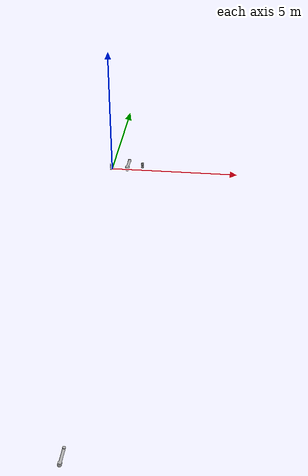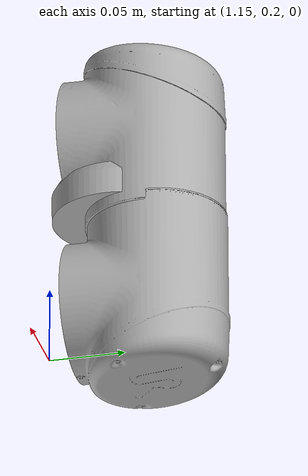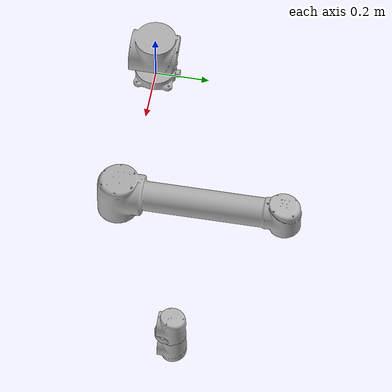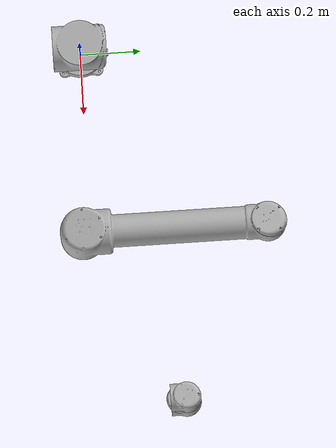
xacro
<?xml version="1.0"?>
<robot xmlns:xacro="http://ros.org/wiki/xacro"
       name="ur10" >

  <!-- common stuff -->
  <xacro:include filename="$(find ur_description)/urdf/common.gazebo.xacro" />

  <!-- ur10 -->
  <xacro:include filename="$(find ur_description)/urdf/my.urdf.xacro" />

  <!-- ur10 calibration -->
  <xacro:include filename="$(find ur_description)/urdf/ur10_1.calibration.xacro" />

  <!-- arm -->
  <xacro:ur10_robot prefix="my_" joint_limited="false"/>

  <link name="world" />

  <joint name="world_joint" type="fixed">
    <parent link="world" />
    <child link = "my_base_link" />
    <origin xyz="0.0 0.0 0.0" rpy="0.0 0.0 0.0" />
  </joint>

</robot>

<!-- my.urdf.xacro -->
<robot xmlns:xacro="http://ros.org/wiki/xacro">

<!--
  Author: Robert Bevec
-->

  <xacro:include filename="$(find ur_description)/urdf/ur.transmission.xacro" />
  <xacro:include filename="$(find ur_description)/urdf/ur.gazebo.xacro" />

  <!-- Inertia parameters -->
  <xacro:property name="base_mass" value="4.0" />  <!-- This mass might be incorrect -->
  <xacro:property name="shoulder_mass" value="7.778" />
  <xacro:property name="upper_arm_mass" value="12.93" />
  <xacro:property name="forearm_mass" value="3.87" />
  <xacro:property name="wrist_1_mass" value="1.96" />
  <xacro:property name="wrist_2_mass" value="1.96" />
  <xacro:property name="wrist_3_mass" value="0.202" />

  <xacro:property name="shoulder_cog" value="0.00008 0.00244 -0.037" />
  <xacro:property name="upper_arm_cog" value="0.00001 0.15061 0.38757" />
  <xacro:property name="forearm_cog" value="-0.00012 0.06112 0.1984" />
  <xacro:property name="wrist_1_cog" value="-0.00021 -0.00112 0.02269" />
  <xacro:property name="wrist_2_cog" value="-0.00021 0.00112 0.002269" />
  <xacro:property name="wrist_3_cog" value="0 -0.001156 -0.00149" />

    <!-- Kinematic model -->
  <!-- Properties from urcontrol.conf -->
  <!-- When applying parameters keep in mind that the parameters are in CS base, not base_link, that is why some minuses appear -->
  <xacro:property name="ur10_a1" value="0.0" />
  <xacro:property name="ur10_a2" value="-0.612" />
  <xacro:property name="ur10_a3" value="-0.5723" />
  <xacro:property name="ur10_a4" value="0.0" />
  <xacro:property name="ur10_a5" value="0.0" />
  <xacro:property name="ur10_a6" value="0.0" />

  <xacro:property name="ur10_d1" value="0.1273" />
  <xacro:property name="ur10_d2" value="0.0" />
  <xacro:property name="ur10_d3" value="0.0" />
  <xacro:property name="ur10_d4" value="0.163941" />
  <xacro:property name="ur10_d5" value="0.1157" />
  <xacro:property name="ur10_d6" value="0.0922" />

  <xacro:property name="ur10_alpha1" value="${pi / 2}" />
  <xacro:property name="ur10_alpha2" value="0.0" />
  <xacro:property name="ur10_alpha3" value="0.0" />
  <xacro:property name="ur10_alpha4" value="${pi / 2}" />
  <xacro:property name="ur10_alpha5" value="${-pi / 2}" />
  <xacro:property name="ur10_alpha6" value="0.0" />

  <!-- Calibrated model -->
  <!-- Properties from calib.conf , include a file in your robot xacro under this include, to overwrite these values. -->
  <xacro:property name="delta_theta1" value="0" />
  <xacro:property name="delta_theta2" value="0" />
  <xacro:property name="delta_theta3" value="0" />
  <xacro:property name="delta_theta4" value="0" />
  <xacro:property name="delta_theta5" value="0" />
  <xacro:property name="delta_theta6" value="0" />

  <xacro:property name="delta_a1" value="0" />
  <xacro:property name="delta_a2" value="0" />
  <xacro:property name="delta_a3" value="0" />
  <xacro:property name="delta_a4" value="0" />
  <xacro:property name="delta_a5" value="0" />
  <xacro:property name="delta_a6" value="0" />

  <xacro:property name="delta_d1" value="0" />
  <xacro:property name="delta_d2" value="0" />
  <xacro:property name="delta_d3" value="0" />
  <xacro:property name="delta_d4" value="0" />
  <xacro:property name="delta_d5" value="0" />
  <xacro:property name="delta_d6" value="0" />

  <xacro:property name="delta_alpha1" value="0" />
  <xacro:property name="delta_alpha2" value="0" />
  <xacro:property name="delta_alpha3" value="0" />
  <xacro:property name="delta_alpha4" value="0" />
  <xacro:property name="delta_alpha5" value="0" />
  <xacro:property name="delta_alpha6" value="0" />

  <!-- Arbitrary offsets for shoulder/elbow joints -->
  <xacro:property name="shoulder_offset" value="0.220941" />  <!-- measured from model -->
  <xacro:property name="elbow_offset" value="-0.1719" /> <!-- measured from model -->

  <xacro:macro name="cylinder_inertial" params="radius length mass *origin">
    <inertial>
      <mass value="${mass}" />
      <xacro:insert_block name="origin" />
      <inertia ixx="${0.0833333 * mass * (3 * radius * radius + length * length)}" ixy="0.0" ixz="0.0"
        iyy="${0.0833333 * mass * (3 * radius * radius + length * length)}" iyz="0.0"
        izz="${0.5 * mass * radius * radius}" />
    </inertial>
  </xacro:macro>

  <xacro:macro name="ur10_robot" params="prefix joint_limited
		 shoulder_pan_lower_limit:=${-pi}    shoulder_pan_upper_limit:=${pi}
		 shoulder_lift_lower_limit:=${-pi}    shoulder_lift_upper_limit:=${pi}
		 elbow_joint_lower_limit:=${-pi}    elbow_joint_upper_limit:=${pi}
		 wrist_1_lower_limit:=${-pi}    wrist_1_upper_limit:=${pi}
		 wrist_2_lower_limit:=${-pi}    wrist_2_upper_limit:=${pi}
		 wrist_3_lower_limit:=${-pi}    wrist_3_upper_limit:=${pi}">

    <link name="${prefix}base" >
      <visual>
        <geometry>
          <mesh filename="package://ur_description/meshes/ur10/visual/base.dae"/>
        </geometry>
        <material name="LightGrey">
          <color rgba="0.7 0.7 0.7 1.0"/>
        </material>
      </visual>
      <collision>
        <geometry>
          <mesh filename="package://ur_description/meshes/ur10/collision/base.stl"/>
        </geometry>
      </collision>
      <xacro:cylinder_inertial radius="0.075" length="0.038" mass="${base_mass}">
        <origin xyz="0.0 0.0 0.0" rpy="0 0 0" />
      </xacro:cylinder_inertial>
    </link>

    <joint name="${prefix}shoulder_pan_joint" type="revolute">
      <parent link="${prefix}base" />
      <child link = "${prefix}shoulder_link_theta" />
      <origin xyz="0.0 0.0 ${ur10_d1 + delta_d1}" rpy="0.0 0.0 ${delta_theta1}" />
      <axis xyz="0 0 1" />
      <xacro:unless value="${joint_limited}">
        <limit lower="${-2.0 * pi}" upper="${2.0 * pi}" effort="330.0" velocity="2.16"/>
      </xacro:unless>
      <xacro:if value="${joint_limited}">
        <limit lower="${shoulder_pan_lower_limit}" upper="${shoulder_pan_upper_limit}" effort="330.0" velocity="2.16"/>
      </xacro:if>
      <dynamics damping="0.0" friction="0.0"/>
    </joint>

    <joint name="${prefix}shoulder_pan_joint_theta" type="fixed">
      <parent link="${prefix}shoulder_link_theta" />
      <child link = "${prefix}shoulder_link" />
      <origin xyz="${ur10_a1 + delta_a1} 0.0 0.0" rpy="${ur10_alpha1 + delta_alpha1} 0.0 0.0" />
    </joint>

    <link name="${prefix}shoulder_link_theta" />
    <link name="${prefix}shoulder_link">
      <visual>
        <geometry>
          <mesh filename="package://ur_description/meshes/ur10/visual/shoulder.dae"/>
        </geometry>
        <material name="LightGrey">
          <color rgba="0.7 0.7 0.7 1.0"/>
        </material>
      </visual>
      <collision>
        <geometry>
          <mesh filename="package://ur_description/meshes/ur10/collision/shoulder.stl"/>
        </geometry>
      </collision>
      <xacro:cylinder_inertial radius="0.075" length="0.178" mass="${shoulder_mass}">
        <origin xyz="0.0 0.0 0.0" rpy="0 0 0" />
      </xacro:cylinder_inertial>
    </link>

    <joint name="${prefix}shoulder_lift_joint" type="revolute">
      <parent link="${prefix}shoulder_link" />
      <child link = "${prefix}upper_arm_link_theta" />
      <origin xyz="0.0 0.0 ${ur10_d2 + delta_d2}" rpy="0.0 0.0 ${delta_theta2}" />
      <axis xyz="0 0 1" />
      <xacro:unless value="${joint_limited}">
        <limit lower="${-2.0 * pi}" upper="${2.0 * pi}" effort="330.0" velocity="2.16"/>
      </xacro:unless>
      <xacro:if value="${joint_limited}">
        <limit lower="${shoulder_lift_lower_limit}" upper="${shoulder_lift_upper_limit}" effort="330.0" velocity="2.16"/>
      </xacro:if>
      <dynamics damping="0.0" friction="0.0"/>
    </joint>

    <joint name="${prefix}shoulder_lift_joint_theta" type="fixed">
      <parent link="${prefix}upper_arm_link_theta" />
      <child link = "${prefix}upper_arm_link" />
      <origin xyz="${ur10_a2 + delta_a2} 0.0 0.0" rpy="${ur10_alpha2 + delta_alpha2} 0.0 0.0" />
    </joint>

    <link name="${prefix}upper_arm_link_theta" />
    <link name="${prefix}upper_arm_link">
      <visual>
        <geometry>
          <mesh filename="package://ur_description/meshes/ur10/visual/upperarm.dae"/>
        </geometry>
        <material name="LightGrey">
          <color rgba="0.7 0.7 0.7 1.0"/>
        </material>
      </visual>
      <collision>
        <geometry>
          <mesh filename="package://ur_description/meshes/ur10/collision/upperarm.stl"/>
        </geometry>
      </collision>
      <xacro:cylinder_inertial radius="0.075" length="${-ur10_a2}" mass="${upper_arm_mass}">
        <origin xyz="0.0 0.0 ${-ur10_a2/2.0}" rpy="0 0 0" />
      </xacro:cylinder_inertial>
    </link>

    <joint name="${prefix}elbow_joint" type="revolute">
      <parent link="${prefix}upper_arm_link" />
      <child link = "${prefix}forearm_link_theta" />
      <origin xyz="0.0 0.0 ${ur10_d3 + delta_d3}" rpy="0.0 0.0 ${delta_theta3}" />
      <axis xyz="0 0 1" />
      <xacro:unless value="${joint_limited}">
        <limit lower="${-pi}" upper="${pi}" effort="150.0" velocity="3.15"/>
      </xacro:unless>
      <xacro:if value="${joint_limited}">
        <limit lower="${elbow_joint_lower_limit}" upper="${elbow_joint_upper_limit}" effort="150.0" velocity="3.15"/>
      </xacro:if>
      <dynamics damping="0.0" friction="0.0"/>
    </joint>
    <joint name="${prefix}elbow_joint_theta" type="fixed">
      <parent link="${prefix}forearm_link_theta" />
      <child link = "${prefix}forearm_link" />
      <origin xyz="${ur10_a3 + delta_a3} 0.0 0.0" rpy="${ur10_alpha3 + delta_alpha3} 0.0 0.0" />
    </joint>

    <link name="${prefix}forearm_link_theta" />
    <link name="${prefix}forearm_link">
      <visual>
         <geometry>
          <mesh filename="package://ur_description/meshes/ur10/visual/forearm.dae"/>
        </geometry>
        <material name="LightGrey">
          <color rgba="0.7 0.7 0.7 1.0"/>
        </material>
      </visual>
      <collision>
        <geometry>
          <mesh filename="package://ur_description/meshes/ur10/collision/forearm.stl"/>
        </geometry>
      </collision>
      <xacro:cylinder_inertial radius="0.075" length="${-ur10_a3}" mass="${forearm_mass}">
        <origin xyz="0.0 0.0 ${-ur10_a3/2.0}" rpy="0 0 0" />
      </xacro:cylinder_inertial>
    </link>

    <joint name="${prefix}wrist_1_joint" type="revolute">
      <parent link="${prefix}forearm_link" />
      <child link = "${prefix}wrist_1_link_theta" />
      <origin xyz="0.0 0.0 ${ur10_d4 + delta_d4}" rpy="0.0 0.0 ${delta_theta4}" />
      <axis xyz="0 0 1" />
      <xacro:unless value="${joint_limited}">
        <limit lower="${-2.0 * pi}" upper="${2.0 * pi}" effort="54.0" velocity="3.2"/>
      </xacro:unless>
      <xacro:if value="${joint_limited}">
        <limit lower="${wrist_1_lower_limit}" upper="${wrist_1_upper_limit}" effort="54.0" velocity="3.2"/>
      </xacro:if>
      <dynamics damping="0.0" friction="0.0"/>
    </joint>
    <joint name="${prefix}wrist_1_joint_theta" type="fixed">
      <parent link="${prefix}wrist_1_link_theta" />
      <child link = "${prefix}wrist_1_link" />
      <origin xyz="${ur10_a4 + delta_a4} 0.0 0.0" rpy="${ur10_alpha4 + delta_alpha4} 0.0 0.0" />
    </joint>

    <link name="${prefix}wrist_1_link_theta" />
    <link name="${prefix}wrist_1_link">
      <visual>
        <geometry>
          <mesh filename="package://ur_description/meshes/ur10/visual/wrist1.dae"/>
        </geometry>
        <material name="LightGrey">
          <color rgba="0.7 0.7 0.7 1.0"/>
        </material>
      </visual>
      <collision>
        <geometry>
          <mesh filename="package://ur_description/meshes/ur10/collision/wrist1.stl"/>
        </geometry>
      </collision>
      <xacro:cylinder_inertial radius="0.075" length="0.12" mass="${wrist_1_mass}">
        <origin xyz="0.0 0.0 0.0" rpy="0 0 0" />
      </xacro:cylinder_inertial>
    </link>

    <joint name="${prefix}wrist_2_joint" type="revolute">
      <parent link="${prefix}wrist_1_link" />
      <child link = "${prefix}wrist_2_link_theta" />
      <origin xyz="0.0 0.0 ${ur10_d5 + delta_d5}" rpy="0.0 0.0 ${delta_theta5}" />
      <axis xyz="0 0 1" />
      <xacro:unless value="${joint_limited}">
        <limit lower="${-2.0 * pi}" upper="${2.0 * pi}" effort="54.0" velocity="3.2"/>
      </xacro:unless>
      <xacro:if value="${joint_limited}">
        <limit lower="${wrist_2_lower_limit}" upper="${wrist_2_upper_limit}" effort="54.0" velocity="3.2"/>
      </xacro:if>
      <dynamics damping="0.0" friction="0.0"/>
    </joint>
    <joint name="${prefix}wrist_2_joint_theta" type="fixed">
      <parent link="${prefix}wrist_2_link_theta" />
      <child link = "${prefix}wrist_2_link" />
      <origin xyz="${ur10_a5 + delta_a5} 0.0 0.0" rpy="${ur10_alpha5 + delta_alpha5} 0.0 0.0" />
    </joint>

    <link name="${prefix}wrist_2_link_theta" />
    <link name="${prefix}wrist_2_link">
      <visual>
        <geometry>
          <mesh filename="package://ur_description/meshes/ur10/visual/wrist2.dae"/>
        </geometry>
        <material name="LightGrey">
          <color rgba="0.7 0.7 0.7 1.0"/>
        </material>
      </visual>
      <collision>
        <geometry>
          <mesh filename="package://ur_description/meshes/ur10/collision/wrist2.stl"/>
        </geometry>
      </collision>
      <xacro:cylinder_inertial radius="0.075" length="0.12" mass="${wrist_2_mass}">
        <origin xyz="0.0 0.0 0.0" rpy="0 0 0" />
      </xacro:cylinder_inertial>
    </link>

    <joint name="${prefix}wrist_3_joint" type="revolute">
      <parent link="${prefix}wrist_2_link" />
      <child link = "${prefix}wrist_3_link_theta" />
      <origin xyz="0.0 0.0 ${ur10_d6 + delta_d6}" rpy="0.0 0.0 ${delta_theta6}" />
      <axis xyz="0 0 1" />
      <xacro:unless value="${joint_limited}">
        <limit lower="${-2.0 * pi}" upper="${2.0 * pi}" effort="54.0" velocity="3.2"/>
      </xacro:unless>
      <xacro:if value="${joint_limited}">
        <limit lower="${wrist_3_lower_limit}" upper="${wrist_3_upper_limit}" effort="54.0" velocity="3.2"/>
      </xacro:if>
      <dynamics damping="0.0" friction="0.0"/>
    </joint>
    <joint name="${prefix}wrist_3_joint_theta" type="fixed">
      <parent link="${prefix}wrist_3_link_theta" />
      <child link = "${prefix}wrist_3_link" />
      <origin xyz="${ur10_a6 + delta_a6} 0.0 0.0" rpy="${ur10_alpha6 + delta_alpha6} 0.0 0.0" />
    </joint>

    <link name="${prefix}wrist_3_link_theta" />
    <link name="${prefix}wrist_3_link">
      <visual>
        <geometry>
          <mesh filename="package://ur_description/meshes/ur10/visual/wrist3.dae"/>
        </geometry>
        <material name="LightGrey">
          <color rgba="0.7 0.7 0.7 1.0"/>
        </material>
      </visual>
      <collision>
        <geometry>

          <mesh filename="package://ur_description/meshes/ur10/collision/wrist3.stl"/>
        </geometry>
      </collision>
      <xacro:cylinder_inertial radius="0.075" length="0.12" mass="${wrist_3_mass}">
        <origin xyz="0.0 0.0 0.0" rpy="0 0 0" />
      </xacro:cylinder_inertial>
    </link>

    <joint name="${prefix}ee_fixed_joint" type="fixed">
      <parent link="${prefix}wrist_3_link" />
      <child link = "${prefix}ee_link" />
      <origin xyz="0.0 0.0 0.0" rpy="0.0 ${-pi/2.0} ${pi/2.0}" />
    </joint>

    <link name="${prefix}ee_link">
      <collision>
        <geometry>
          <box size="0.01 0.01 0.01"/>
        </geometry>
        <origin rpy="0 0 0" xyz="-0.01 0 0"/>
      </collision>
    </link>

    <xacro:ur_arm_transmission prefix="${prefix}" />
    <xacro:ur_arm_gazebo prefix="${prefix}" />

    <!-- ROS base_link to UR 'Base' Coordinates transform -->
    <link name="${prefix}base_link"/>
    <joint name="${prefix}base-base_link_fixed_joint" type="fixed">
      <!-- NOTE: this rotation is only needed as long as base_link itself is
                 not corrected wrt the real robot (ie: rotated over 180
                 degrees)
      -->
      <origin xyz="0 0 0" rpy="0 0 ${-pi}"/>
      <parent link="${prefix}base_link"/>
      <child link="${prefix}base"/>
    </joint>

    <!-- Frame coincident with all-zeros TCP on UR controller -->
    <link name="${prefix}tool0"/>
    <joint name="${prefix}wrist_3_link-tool0_fixed_joint" type="fixed">
      <origin xyz="0 0 0" rpy="0 0 0"/>
      <parent link="${prefix}wrist_3_link"/>
      <child link="${prefix}tool0"/>
    </joint>

  </xacro:macro>
</robot>

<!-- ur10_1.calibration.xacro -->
<robot xmlns:xacro="http://ros.org/wiki/xacro">
  <!-- Calibrated model -->
  <!-- Properties from calib.conf -->
  <xacro:property name="delta_theta1" value="-0.0000197850701944219247" />
  <xacro:property name="delta_theta2" value="0.000201462290104538797" />
  <xacro:property name="delta_theta3" value="0.161845418395399482" />
  <xacro:property name="delta_theta4" value="-0.161978431361046782" />
  <xacro:property name="delta_theta5" value="-0.0000818201554555377376" />
  <xacro:property name="delta_theta6" value="0.00000671758758682964541" />

  <xacro:property name="delta_a1" value="0.000158446828127298446" />
  <xacro:property name="delta_a2" value="-0.000365891870255152796" />
  <xacro:property name="delta_a3" value="0.00859992418659250024" />
  <xacro:property name="delta_a4" value="0.000185997155766058528" />
  <xacro:property name="delta_a5" value="0.0000831112940804089751" />
  <xacro:property name="delta_a6" value="0.0" />

  <xacro:property name="delta_d1" value="0.000589172256288156282" />
  <xacro:property name="delta_d2" value="-0.028897132408511942" />
  <xacro:property name="delta_d3" value="-16.0423841961902234" />
  <xacro:property name="delta_d4" value="16.0704712348591521" />
  <xacro:property name="delta_d5" value="-0.0000989525525437184861" />
  <xacro:property name="delta_d6" value="-0.000244457179784232648" />

  <xacro:property name="delta_alpha1" value="0.000710613899062906285" />
  <xacro:property name="delta_alpha2" value="-0.00296938046861772642" />
  <xacro:property name="delta_alpha3" value="-0.00573144103189916678" />
  <xacro:property name="delta_alpha4" value="-0.000192483211580940505" />
  <xacro:property name="delta_alpha5" value="0.00030432728186813307" />
  <xacro:property name="delta_alpha6" value="0.0" />
</robot>
